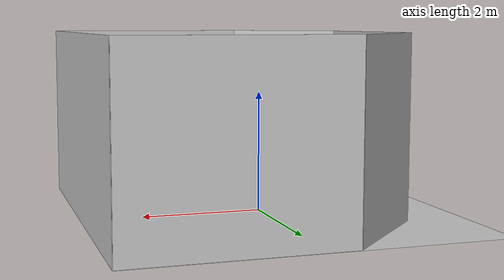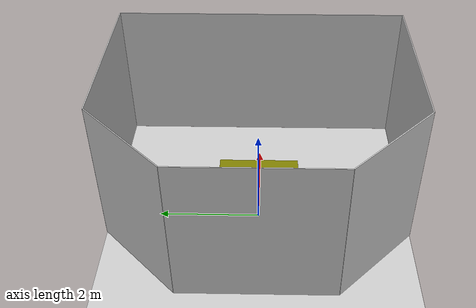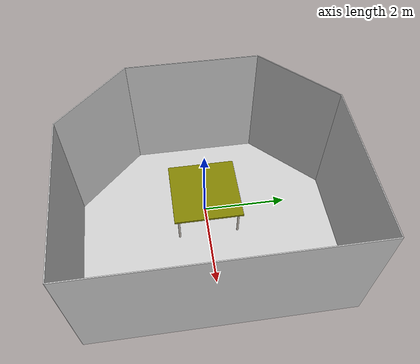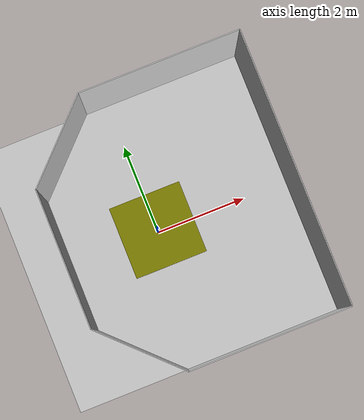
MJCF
<?xml version="1.0" encoding="utf-8"?>
<mujoco model="robosuite_arena_only">
  <compiler angle="radian" meshdir="meshes/"/>

  <option impratio="20" density="1.2" viscosity="2e-05" cone="elliptic"/>
  <size njmax="5000" nconmax="5000"/>

  <visual>
    <map znear="0.001"/>
  </visual>

  <asset>
    <!-- Skybox -->
    <texture type="skybox" colorspace="auto" builtin="gradient"
             rgb1="0.9 0.9 1" rgb2="0.2 0.3 0.4" width="256" height="1536"/>

    <!-- Arena textures -->
    <texture type="2d" colorspace="sRGB" name="texplane"
             file="D:\mujoco_simulation/robosuite/models/assets/textures/light-gray-floor-tile.png"/>
    <texture type="cube" colorspace="linear" name="tex-ceramic"
             file="D:\mujoco_simulation/robosuite/models/assets/textures/ceramic.png"/>
    <texture type="cube" colorspace="linear" name="tex-steel-brushed"
             file="D:\mujoco_simulation/robosuite/models/assets/textures/steel-brushed.png"/>
    <texture type="2d" colorspace="linear" name="tex-light-gray-plaster"
             file="D:\mujoco_simulation/robosuite/models/assets/textures/light-gray-plaster.png"/>

    <!-- Materials -->
    <material name="floorplane" texture="texplane" texuniform="true" texrepeat="2 2"
              specular="0" shininess="0" reflectance="0.01"/>
    <material name="table_ceramic" texture="tex-ceramic" specular="0.2" shininess="0"/>
    <material name="table_legs_metal" texture="tex-steel-brushed" shininess="0.8" reflectance="0.8"/>
    <material name="walls_mat" texture="tex-light-gray-plaster" texuniform="true" texrepeat="3 3"
              specular="0.1" shininess="0.1"/>
  </asset>

  <worldbody>
    <!-- Floor -->
    <geom name="floor" size="3 3 0.125" type="plane" group="1" material="floorplane"/>

    <!-- Walls (visual only) -->
    <geom name="wall_leftcorner_visual"  size="1.06 1.5 0.01" pos="-1.25  2.25 1.5"
          quat="0.653281 0.653281 0.270598 0.270598" type="box" contype="0" conaffinity="0"
          group="1" material="walls_mat"/>
    <geom name="wall_rightcorner_visual" size="1.06 1.5 0.01" pos="-1.25 -2.25 1.5"
          quat="0.653281 0.653281 -0.270598 -0.270598" type="box" contype="0" conaffinity="0"
          group="1" material="walls_mat"/>
    <geom name="wall_left_visual"  size="1.75 1.5 0.01" pos=" 1.25  3.0 1.5"
          quat="0.707107 0.707107 0 0" type="box" contype="0" conaffinity="0"
          group="1" material="walls_mat"/>
    <geom name="wall_right_visual" size="1.75 1.5 0.01" pos=" 1.25 -3.0 1.5"
          quat="0.707107 -0.707107 0 0" type="box" contype="0" conaffinity="0"
          group="1" material="walls_mat"/>
    <geom name="wall_rear_visual"  size="1.5 1.5 0.01" pos="-2.0  0.0 1.5"
          quat="0.5 0.5 0.5 0.5" type="box" contype="0" conaffinity="0"
          group="1" material="walls_mat"/>
    <geom name="wall_front_visual" size="3.0 1.5 0.01" pos=" 3.0  0.0 1.5"
          quat="0.5 0.5 -0.5 -0.5" type="box" contype="0" conaffinity="0"
          group="1" material="walls_mat"/>

    <!-- Cameras (optional) -->
    <camera name="frontview" pos="1.6 0 1.45" quat="0.560842 0.430646 0.430646 0.560842"/>
    <camera name="birdview"  pos="-0.2 0 3"  quat="0.707107 0 0 0.707107"/>
    <camera name="agentview" pos="0.5 0 1.35" quat="0.653098 0.271041 0.271041 0.653098"/>
    <camera name="sideview"  pos="-0.0565177 1.27612 1.48796" quat="0.00990507 0.00687796 0.591223 0.806418"/>

    <!-- Light -->
    <light pos="1 1 1.5" dir="-0.19245 -0.19245 -0.96225" type="directional" castshadow="false"/>

    <!-- Table -->
    <body name="table" pos="0 0 0.775">
      <!-- Collision top -->
      <geom name="table_collision" size="0.8 0.8 0.025" type="box" rgba="0.5 0.5 0 1"/>
      <!-- Visual top -->
      <geom name="table_visual" size="0.8 0.8 0.025" type="box"
            contype="0" conaffinity="0" group="1" material="table_ceramic"/>
      <!-- Legs (visual only) -->
      <geom name="table_leg1_visual" size="0.025 0.3875" pos=" 0.7  0.7 -0.3875" type="cylinder"
            contype="0" conaffinity="0" group="1" material="table_legs_metal"/>
      <geom name="table_leg2_visual" size="0.025 0.3875" pos=" -0.7  0.7 -0.3875" type="cylinder"
            contype="0" conaffinity="0" group="1" material="table_legs_metal"/>
      <geom name="table_leg3_visual" size="0.025 0.3875" pos=" -0.7  -0.7 -0.3875" type="cylinder"
            contype="0" conaffinity="0" group="1" material="table_legs_metal"/>
      <geom name="table_leg4_visual" size="0.025 0.3875" pos=" 0.7  -0.7 -0.3875" type="cylinder"
            contype="0" conaffinity="0" group="1" material="table_legs_metal"/>

      <!-- Handy marker: table top center (world z = 0.775 + 0.025 = 0.800) -->
      <site name="table_top" pos="0 0 0.025" size="0.001" rgba="0 0 0 0"/>
    </body>
  </worldbody>
</mujoco>
